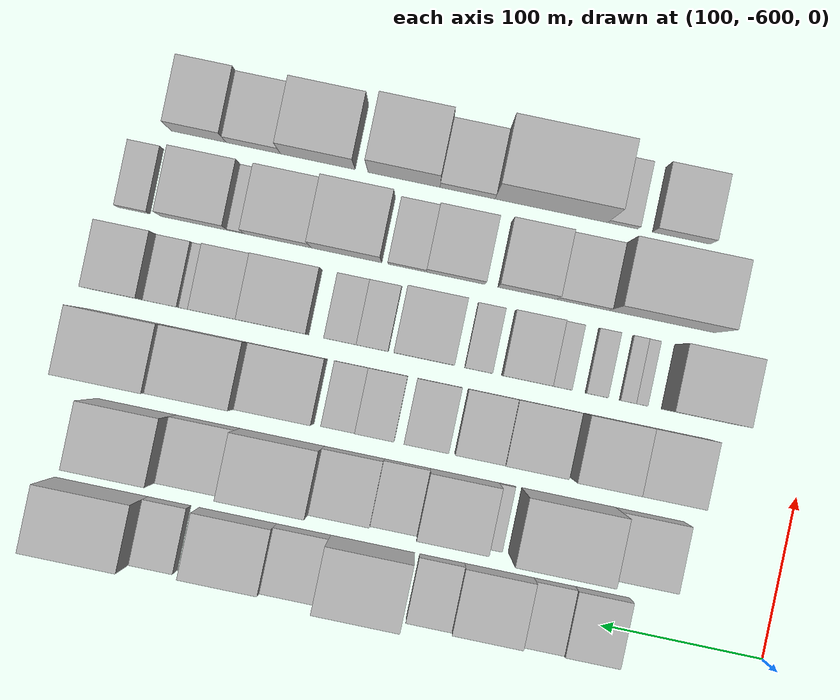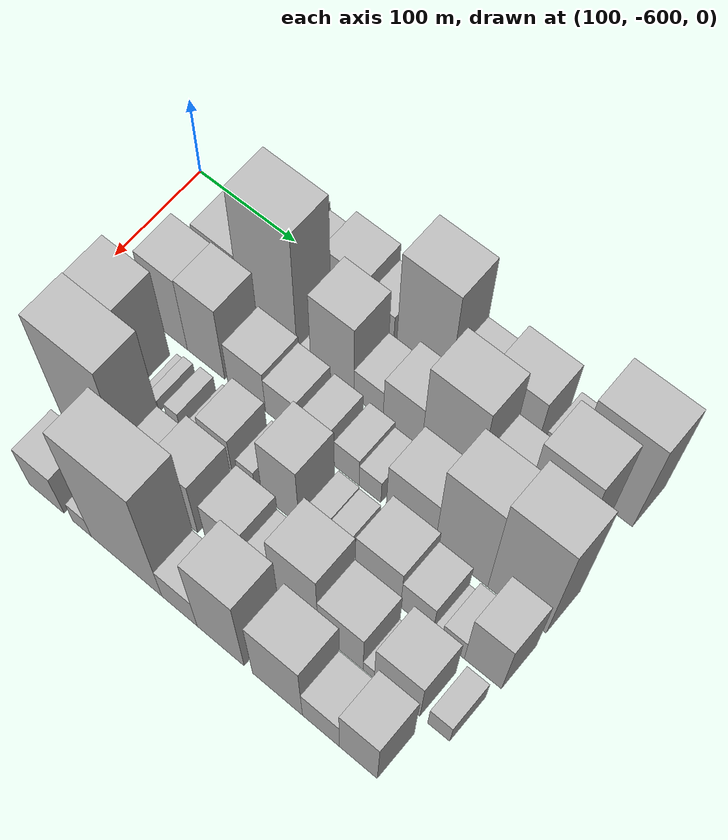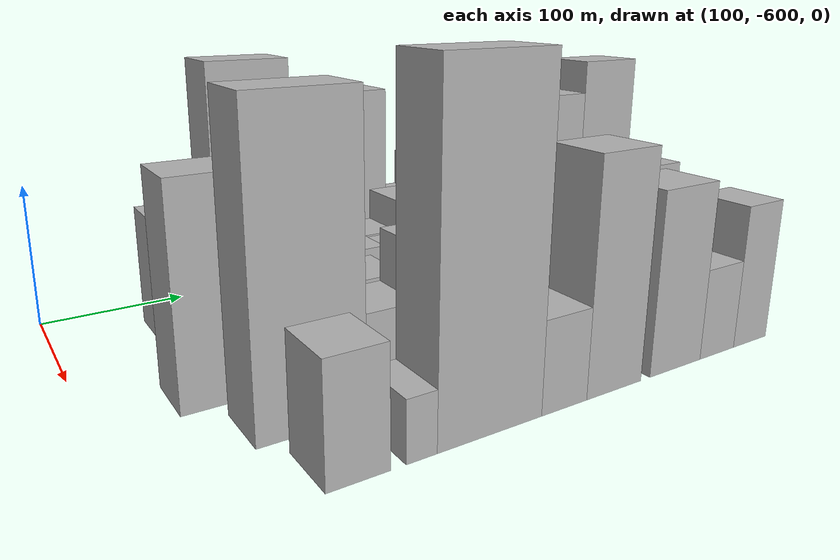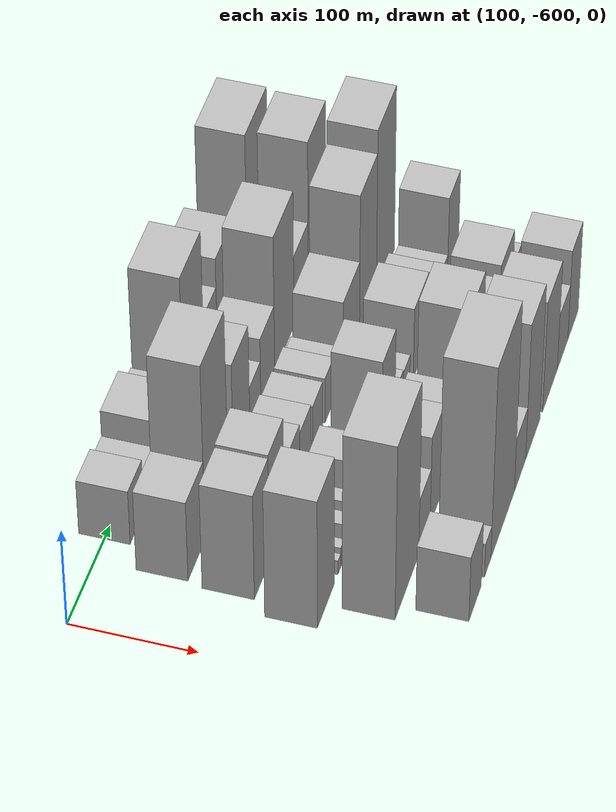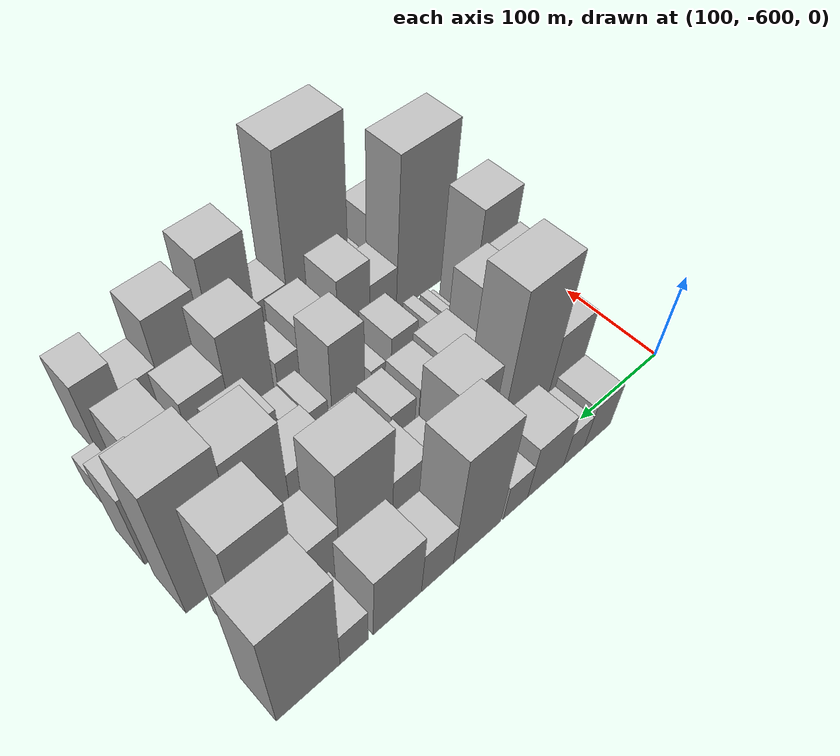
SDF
<sdf version="1.6">
 <world name="default">
  <model name="building_10">
   <static>1</static>
   <pose>100.0000 -496.7508 0 0.000000 0.000000 0.000000</pose>
   <link name="link">
    <pose>0 0 28.50 0 0 0</pose>
    <collision name="collision"><geometry><box><size>40.0000 33.5108 57.0000</size></box></geometry></collision>
    <visual name="visual">
     <cast_shadows>0</cast_shadows>
     <geometry><box><size>40.0000 33.5108 57.0000</size></box></geometry>
     <material>
      <script>
       <uri>model://HANNAS_wall/materials/scripts</uri>
       <uri>model://HANNAS_wall/materials/textures</uri>
       <name>vrc/HANNAS_wall</name>
      </script>
     </material>
    </visual>
   </link>
  </model>
  <model name="building_11">
   <static>1</static>
   <pose>100.0000 -467.1961 0 0.000000 0.000000 0.000000</pose>
   <link name="link">
    <pose>0 0 22.50 0 0 0</pose>
    <collision name="collision"><geometry><box><size>40.0000 25.5986 45.0000</size></box></geometry></collision>
    <visual name="visual">
     <cast_shadows>0</cast_shadows>
     <geometry><box><size>40.0000 25.5986 45.0000</size></box></geometry>
     <material>
      <script>
       <uri>model://HANNAS_wall/materials/scripts</uri>
       <uri>model://HANNAS_wall/materials/textures</uri>
       <name>vrc/HANNAS_wall</name>
      </script>
     </material>
    </visual>
   </link>
  </model>
  <model name="building_12">
   <static>1</static>
   <pose>100.0000 -432.8682 0 0.000000 0.000000 0.000000</pose>
   <link name="link">
    <pose>0 0 36.00 0 0 0</pose>
    <collision name="collision"><geometry><box><size>40.0000 43.0573 72.0000</size></box></geometry></collision>
    <visual name="visual">
     <cast_shadows>0</cast_shadows>
     <geometry><box><size>40.0000 43.0573 72.0000</size></box></geometry>
     <material>
      <script>
       <uri>model://HANNAS_wall/materials/scripts</uri>
       <uri>model://HANNAS_wall/materials/textures</uri>
       <name>vrc/HANNAS_wall</name>
      </script>
     </material>
    </visual>
   </link>
  </model>
  <model name="building_13">
   <static>1</static>
   <pose>100.0000 -397.3391 0 0.000000 0.000000 0.000000</pose>
   <link name="link">
    <pose>0 0 24.00 0 0 0</pose>
    <collision name="collision"><geometry><box><size>40.0000 28.0010 48.0000</size></box></geometry></collision>
    <visual name="visual">
     <cast_shadows>0</cast_shadows>
     <geometry><box><size>40.0000 28.0010 48.0000</size></box></geometry>
     <material>
      <script>
       <uri>model://HANNAS_wall/materials/scripts</uri>
       <uri>model://HANNAS_wall/materials/textures</uri>
       <name>vrc/HANNAS_wall</name>
      </script>
     </material>
    </visual>
   </link>
  </model>
  <model name="building_14">
   <static>1</static>
   <pose>100.0000 -354.3156 0 0.000000 0.000000 0.000000</pose>
   <link name="link">
    <pose>0 0 75.00 0 0 0</pose>
    <collision name="collision"><geometry><box><size>40.0000 52.0459 150.0000</size></box></geometry></collision>
    <visual name="visual">
     <cast_shadows>0</cast_shadows>
     <geometry><box><size>40.0000 52.0459 150.0000</size></box></geometry>
     <material>
      <script>
       <uri>model://HANNAS_wall/materials/scripts</uri>
       <uri>model://HANNAS_wall/materials/textures</uri>
       <name>vrc/HANNAS_wall</name>
      </script>
     </material>
    </visual>
   </link>
  </model>
  <model name="building_15">
   <static>1</static>
   <pose>100.0000 -311.5082 0 0.000000 0.000000 0.000000</pose>
   <link name="link">
    <pose>0 0 30.00 0 0 0</pose>
    <collision name="collision"><geometry><box><size>40.0000 33.5690 60.0000</size></box></geometry></collision>
    <visual name="visual">
     <cast_shadows>0</cast_shadows>
     <geometry><box><size>40.0000 33.5690 60.0000</size></box></geometry>
     <material>
      <script>
       <uri>model://HANNAS_wall/materials/scripts</uri>
       <uri>model://HANNAS_wall/materials/textures</uri>
       <name>vrc/HANNAS_wall</name>
      </script>
     </material>
    </visual>
   </link>
  </model>
  <model name="building_16">
   <static>1</static>
   <pose>100.0000 -270.7139 0 0.000000 0.000000 0.000000</pose>
   <link name="link">
    <pose>0 0 45.00 0 0 0</pose>
    <collision name="collision"><geometry><box><size>40.0000 48.0197 90.0000</size></box></geometry></collision>
    <visual name="visual">
     <cast_shadows>0</cast_shadows>
     <geometry><box><size>40.0000 48.0197 90.0000</size></box></geometry>
     <material>
      <script>
       <uri>model://HANNAS_wall/materials/scripts</uri>
       <uri>model://HANNAS_wall/materials/textures</uri>
       <name>vrc/HANNAS_wall</name>
      </script>
     </material>
    </visual>
   </link>
  </model>
  <model name="building_17">
   <static>1</static>
   <pose>100.0000 -228.3283 0 0.000000 0.000000 0.000000</pose>
   <link name="link">
    <pose>0 0 25.50 0 0 0</pose>
    <collision name="collision"><geometry><box><size>40.0000 26.7515 51.0000</size></box></geometry></collision>
    <visual name="visual">
     <cast_shadows>0</cast_shadows>
     <geometry><box><size>40.0000 26.7515 51.0000</size></box></geometry>
     <material>
      <script>
       <uri>model://HANNAS_wall/materials/scripts</uri>
       <uri>model://HANNAS_wall/materials/textures</uri>
       <name>vrc/HANNAS_wall</name>
      </script>
     </material>
    </visual>
   </link>
  </model>
  <model name="building_18">
   <static>1</static>
   <pose>100.0000 -186.0432 0 0.000000 0.000000 0.000000</pose>
   <link name="link">
    <pose>0 0 73.50 0 0 0</pose>
    <collision name="collision"><geometry><box><size>40.0000 57.8186 147.0000</size></box></geometry></collision>
    <visual name="visual">
     <cast_shadows>0</cast_shadows>
     <geometry><box><size>40.0000 57.8186 147.0000</size></box></geometry>
     <material>
      <script>
       <uri>model://HANNAS_wall/materials/scripts</uri>
       <uri>model://HANNAS_wall/materials/textures</uri>
       <name>vrc/HANNAS_wall</name>
      </script>
     </material>
    </visual>
   </link>
  </model>
  <model name="building_58">
   <static>1</static>
   <pose>152.0000 -514.9470 0 0.000000 0.000000 0.000000</pose>
   <link name="link">
    <pose>0 0 42.00 0 0 0</pose>
    <collision name="collision"><geometry><box><size>40.0000 42.4287 84.0000</size></box></geometry></collision>
    <visual name="visual">
     <cast_shadows>0</cast_shadows>
     <geometry><box><size>40.0000 42.4287 84.0000</size></box></geometry>
     <material>
      <script>
       <uri>model://HANNAS_wall/materials/scripts</uri>
       <uri>model://HANNAS_wall/materials/textures</uri>
       <name>vrc/HANNAS_wall</name>
      </script>
     </material>
    </visual>
   </link>
  </model>
  <model name="building_59">
   <static>1</static>
   <pose>152.0000 -464.6839 0 0.000000 0.000000 0.000000</pose>
   <link name="link">
    <pose>0 0 91.50 0 0 0</pose>
    <collision name="collision"><geometry><box><size>40.0000 58.0975 183.0000</size></box></geometry></collision>
    <visual name="visual">
     <cast_shadows>0</cast_shadows>
     <geometry><box><size>40.0000 58.0975 183.0000</size></box></geometry>
     <material>
      <script>
       <uri>model://HANNAS_wall/materials/scripts</uri>
       <uri>model://HANNAS_wall/materials/textures</uri>
       <name>vrc/HANNAS_wall</name>
      </script>
     </material>
    </visual>
   </link>
  </model>
  <model name="building_60">
   <static>1</static>
   <pose>152.0000 -426.7891 0 0.000000 0.000000 0.000000</pose>
   <link name="link">
    <pose>0 0 10.50 0 0 0</pose>
    <collision name="collision"><geometry><box><size>40.0000 9.6920 21.0000</size></box></geometry></collision>
    <visual name="visual">
     <cast_shadows>0</cast_shadows>
     <geometry><box><size>40.0000 9.6920 21.0000</size></box></geometry>
     <material>
      <script>
       <uri>model://HANNAS_wall/materials/scripts</uri>
       <uri>model://HANNAS_wall/materials/textures</uri>
       <name>vrc/HANNAS_wall</name>
      </script>
     </material>
    </visual>
   </link>
  </model>
  <model name="building_61">
   <static>1</static>
   <pose>152.0000 -400.5287 0 0.000000 0.000000 0.000000</pose>
   <link name="link">
    <pose>0 0 57.00 0 0 0</pose>
    <collision name="collision"><geometry><box><size>40.0000 42.8288 114.0000</size></box></geometry></collision>
    <visual name="visual">
     <cast_shadows>0</cast_shadows>
     <geometry><box><size>40.0000 42.8288 114.0000</size></box></geometry>
     <material>
      <script>
       <uri>model://HANNAS_wall/materials/scripts</uri>
       <uri>model://HANNAS_wall/materials/textures</uri>
       <name>vrc/HANNAS_wall</name>
      </script>
     </material>
    </visual>
   </link>
  </model>
  <model name="building_62">
   <static>1</static>
   <pose>152.0000 -364.8588 0 0.000000 0.000000 0.000000</pose>
   <link name="link">
    <pose>0 0 24.00 0 0 0</pose>
    <collision name="collision"><geometry><box><size>40.0000 28.5111 48.0000</size></box></geometry></collision>
    <visual name="visual">
     <cast_shadows>0</cast_shadows>
     <geometry><box><size>40.0000 28.5111 48.0000</size></box></geometry>
     <material>
      <script>
       <uri>model://HANNAS_wall/materials/scripts</uri>
       <uri>model://HANNAS_wall/materials/textures</uri>
       <name>vrc/HANNAS_wall</name>
      </script>
     </material>
    </visual>
   </link>
  </model>
  <model name="building_63">
   <static>1</static>
   <pose>152.0000 -332.0911 0 0.000000 0.000000 0.000000</pose>
   <link name="link">
    <pose>0 0 36.00 0 0 0</pose>
    <collision name="collision"><geometry><box><size>40.0000 37.0244 72.0000</size></box></geometry></collision>
    <visual name="visual">
     <cast_shadows>0</cast_shadows>
     <geometry><box><size>40.0000 37.0244 72.0000</size></box></geometry>
     <material>
      <script>
       <uri>model://HANNAS_wall/materials/scripts</uri>
       <uri>model://HANNAS_wall/materials/textures</uri>
       <name>vrc/HANNAS_wall</name>
      </script>
     </material>
    </visual>
   </link>
  </model>
  <model name="building_64">
   <static>1</static>
   <pose>152.0000 -287.3211 0 0.000000 0.000000 0.000000</pose>
   <link name="link">
    <pose>0 0 72.00 0 0 0</pose>
    <collision name="collision"><geometry><box><size>40.0000 52.5156 144.0000</size></box></geometry></collision>
    <visual name="visual">
     <cast_shadows>0</cast_shadows>
     <geometry><box><size>40.0000 52.5156 144.0000</size></box></geometry>
     <material>
      <script>
       <uri>model://HANNAS_wall/materials/scripts</uri>
       <uri>model://HANNAS_wall/materials/textures</uri>
       <name>vrc/HANNAS_wall</name>
      </script>
     </material>
    </visual>
   </link>
  </model>
  <model name="building_65">
   <static>1</static>
   <pose>152.0000 -241.3516 0 0.000000 0.000000 0.000000</pose>
   <link name="link">
    <pose>0 0 37.50 0 0 0</pose>
    <collision name="collision"><geometry><box><size>40.0000 39.4234 75.0000</size></box></geometry></collision>
    <visual name="visual">
     <cast_shadows>0</cast_shadows>
     <geometry><box><size>40.0000 39.4234 75.0000</size></box></geometry>
     <material>
      <script>
       <uri>model://HANNAS_wall/materials/scripts</uri>
       <uri>model://HANNAS_wall/materials/textures</uri>
       <name>vrc/HANNAS_wall</name>
      </script>
     </material>
    </visual>
   </link>
  </model>
  <model name="building_66">
   <static>1</static>
   <pose>152.0000 -197.1437 0 0.000000 0.000000 0.000000</pose>
   <link name="link">
    <pose>0 0 79.50 0 0 0</pose>
    <collision name="collision"><geometry><box><size>40.0000 48.9924 159.0000</size></box></geometry></collision>
    <visual name="visual">
     <cast_shadows>0</cast_shadows>
     <geometry><box><size>40.0000 48.9924 159.0000</size></box></geometry>
     <material>
      <script>
       <uri>model://HANNAS_wall/materials/scripts</uri>
       <uri>model://HANNAS_wall/materials/textures</uri>
       <name>vrc/HANNAS_wall</name>
      </script>
     </material>
    </visual>
   </link>
  </model>
  <model name="building_113">
   <static>1</static>
   <pose>204.0000 -520.7409 0 0.000000 0.000000 0.000000</pose>
   <link name="link">
    <pose>0 0 55.50 0 0 0</pose>
    <collision name="collision"><geometry><box><size>40.0000 38.5921 111.0000</size></box></geometry></collision>
    <visual name="visual">
     <cast_shadows>0</cast_shadows>
     <geometry><box><size>40.0000 38.5921 111.0000</size></box></geometry>
     <material>
      <script>
       <uri>model://HANNAS_wall/materials/scripts</uri>
       <uri>model://HANNAS_wall/materials/textures</uri>
       <name>vrc/HANNAS_wall</name>
      </script>
     </material>
    </visual>
   </link>
  </model>
  <model name="building_114">
   <static>1</static>
   <pose>204.0000 -482.3023 0 0.000000 0.000000 0.000000</pose>
   <link name="link">
    <pose>0 0 57.00 0 0 0</pose>
    <collision name="collision"><geometry><box><size>40.0000 38.2851 114.0000</size></box></geometry></collision>
    <visual name="visual">
     <cast_shadows>0</cast_shadows>
     <geometry><box><size>40.0000 38.2851 114.0000</size></box></geometry>
     <material>
      <script>
       <uri>model://HANNAS_wall/materials/scripts</uri>
       <uri>model://HANNAS_wall/materials/textures</uri>
       <name>vrc/HANNAS_wall</name>
      </script>
     </material>
    </visual>
   </link>
  </model>
  <model name="building_115">
   <static>1</static>
   <pose>204.0000 -441.0456 0 0.000000 0.000000 0.000000</pose>
   <link name="link">
    <pose>0 0 33.00 0 0 0</pose>
    <collision name="collision"><geometry><box><size>40.0000 38.2282 66.0000</size></box></geometry></collision>
    <visual name="visual">
     <cast_shadows>0</cast_shadows>
     <geometry><box><size>40.0000 38.2282 66.0000</size></box></geometry>
     <material>
      <script>
       <uri>model://HANNAS_wall/materials/scripts</uri>
       <uri>model://HANNAS_wall/materials/textures</uri>
       <name>vrc/HANNAS_wall</name>
      </script>
     </material>
    </visual>
   </link>
  </model>
  <model name="building_116">
   <static>1</static>
   <pose>204.0000 -406.7556 0 0.000000 0.000000 0.000000</pose>
   <link name="link">
    <pose>0 0 28.50 0 0 0</pose>
    <collision name="collision"><geometry><box><size>40.0000 30.3517 57.0000</size></box></geometry></collision>
    <visual name="visual">
     <cast_shadows>0</cast_shadows>
     <geometry><box><size>40.0000 30.3517 57.0000</size></box></geometry>
     <material>
      <script>
       <uri>model://HANNAS_wall/materials/scripts</uri>
       <uri>model://HANNAS_wall/materials/textures</uri>
       <name>vrc/HANNAS_wall</name>
      </script>
     </material>
    </visual>
   </link>
  </model>
  <model name="building_117">
   <static>1</static>
   <pose>204.0000 -373.9342 0 0.000000 0.000000 0.000000</pose>
   <link name="link">
    <pose>0 0 25.50 0 0 0</pose>
    <collision name="collision"><geometry><box><size>40.0000 27.2911 51.0000</size></box></geometry></collision>
    <visual name="visual">
     <cast_shadows>0</cast_shadows>
     <geometry><box><size>40.0000 27.2911 51.0000</size></box></geometry>
     <material>
      <script>
       <uri>model://HANNAS_wall/materials/scripts</uri>
       <uri>model://HANNAS_wall/materials/textures</uri>
       <name>vrc/HANNAS_wall</name>
      </script>
     </material>
    </visual>
   </link>
  </model>
  <model name="building_118">
   <static>1</static>
   <pose>204.0000 -342.2730 0 0.000000 0.000000 0.000000</pose>
   <link name="link">
    <pose>0 0 24.00 0 0 0</pose>
    <collision name="collision"><geometry><box><size>40.0000 24.0312 48.0000</size></box></geometry></collision>
    <visual name="visual">
     <cast_shadows>0</cast_shadows>
     <geometry><box><size>40.0000 24.0312 48.0000</size></box></geometry>
     <material>
      <script>
       <uri>model://HANNAS_wall/materials/scripts</uri>
       <uri>model://HANNAS_wall/materials/textures</uri>
       <name>vrc/HANNAS_wall</name>
      </script>
     </material>
    </visual>
   </link>
  </model>
  <model name="building_119">
   <static>1</static>
   <pose>204.0000 -319.8531 0 0.000000 0.000000 0.000000</pose>
   <link name="link">
    <pose>0 0 19.50 0 0 0</pose>
    <collision name="collision"><geometry><box><size>40.0000 20.8086 39.0000</size></box></geometry></collision>
    <visual name="visual">
     <cast_shadows>0</cast_shadows>
     <geometry><box><size>40.0000 20.8086 39.0000</size></box></geometry>
     <material>
      <script>
       <uri>model://HANNAS_wall/materials/scripts</uri>
       <uri>model://HANNAS_wall/materials/textures</uri>
       <name>vrc/HANNAS_wall</name>
      </script>
     </material>
    </visual>
   </link>
  </model>
  <model name="building_120">
   <static>1</static>
   <pose>204.0000 -281.4233 0 0.000000 0.000000 0.000000</pose>
   <link name="link">
    <pose>0 0 40.50 0 0 0</pose>
    <collision name="collision"><geometry><box><size>40.0000 46.0510 81.0000</size></box></geometry></collision>
    <visual name="visual">
     <cast_shadows>0</cast_shadows>
     <geometry><box><size>40.0000 46.0510 81.0000</size></box></geometry>
     <material>
      <script>
       <uri>model://HANNAS_wall/materials/scripts</uri>
       <uri>model://HANNAS_wall/materials/textures</uri>
       <name>vrc/HANNAS_wall</name>
      </script>
     </material>
    </visual>
   </link>
  </model>
  <model name="building_121">
   <static>1</static>
   <pose>204.0000 -234.1005 0 0.000000 0.000000 0.000000</pose>
   <link name="link">
    <pose>0 0 75.00 0 0 0</pose>
    <collision name="collision"><geometry><box><size>40.0000 48.5946 150.0000</size></box></geometry></collision>
    <visual name="visual">
     <cast_shadows>0</cast_shadows>
     <geometry><box><size>40.0000 48.5946 150.0000</size></box></geometry>
     <material>
      <script>
       <uri>model://HANNAS_wall/materials/scripts</uri>
       <uri>model://HANNAS_wall/materials/textures</uri>
       <name>vrc/HANNAS_wall</name>
      </script>
     </material>
    </visual>
   </link>
  </model>
  <model name="building_122">
   <static>1</static>
   <pose>204.0000 -183.3602 0 0.000000 0.000000 0.000000</pose>
   <link name="link">
    <pose>0 0 87.00 0 0 0</pose>
    <collision name="collision"><geometry><box><size>40.0000 52.8860 174.0000</size></box></geometry></collision>
    <visual name="visual">
     <cast_shadows>0</cast_shadows>
     <geometry><box><size>40.0000 52.8860 174.0000</size></box></geometry>
     <material>
      <script>
       <uri>model://HANNAS_wall/materials/scripts</uri>
       <uri>model://HANNAS_wall/materials/textures</uri>
       <name>vrc/HANNAS_wall</name>
      </script>
     </material>
    </visual>
   </link>
  </model>
  <model name="building_164">
   <static>1</static>
   <pose>256.0000 -531.2006 0 0.000000 0.000000 0.000000</pose>
   <link name="link">
    <pose>0 0 67.50 0 0 0</pose>
    <collision name="collision"><geometry><box><size>40.0000 45.1703 135.0000</size></box></geometry></collision>
    <visual name="visual">
     <cast_shadows>0</cast_shadows>
     <geometry><box><size>40.0000 45.1703 135.0000</size></box></geometry>
     <material>
      <script>
       <uri>model://HANNAS_wall/materials/scripts</uri>
       <uri>model://HANNAS_wall/materials/textures</uri>
       <name>vrc/HANNAS_wall</name>
      </script>
     </material>
    </visual>
   </link>
  </model>
  <model name="building_165">
   <static>1</static>
   <pose>256.0000 -495.9072 0 0.000000 0.000000 0.000000</pose>
   <link name="link">
    <pose>0 0 7.50 0 0 0</pose>
    <collision name="collision"><geometry><box><size>40.0000 7.4165 15.0000</size></box></geometry></collision>
    <visual name="visual">
     <cast_shadows>0</cast_shadows>
     <geometry><box><size>40.0000 7.4165 15.0000</size></box></geometry>
     <material>
      <script>
       <uri>model://HANNAS_wall/materials/scripts</uri>
       <uri>model://HANNAS_wall/materials/textures</uri>
       <name>vrc/HANNAS_wall</name>
      </script>
     </material>
    </visual>
   </link>
  </model>
  <model name="building_166">
   <static>1</static>
   <pose>256.0000 -487.3966 0 0.000000 0.000000 0.000000</pose>
   <link name="link">
    <pose>0 0 10.50 0 0 0</pose>
    <collision name="collision"><geometry><box><size>40.0000 9.6047 21.0000</size></box></geometry></collision>
    <visual name="visual">
     <cast_shadows>0</cast_shadows>
     <geometry><box><size>40.0000 9.6047 21.0000</size></box></geometry>
     <material>
      <script>
       <uri>model://HANNAS_wall/materials/scripts</uri>
       <uri>model://HANNAS_wall/materials/textures</uri>
       <name>vrc/HANNAS_wall</name>
      </script>
     </material>
    </visual>
   </link>
  </model>
  <model name="building_167">
   <static>1</static>
   <pose>256.0000 -468.0125 0 0.000000 0.000000 0.000000</pose>
   <link name="link">
    <pose>0 0 13.50 0 0 0</pose>
    <collision name="collision"><geometry><box><size>40.0000 13.1635 27.0000</size></box></geometry></collision>
    <visual name="visual">
     <cast_shadows>0</cast_shadows>
     <geometry><box><size>40.0000 13.1635 27.0000</size></box></geometry>
     <material>
      <script>
       <uri>model://HANNAS_wall/materials/scripts</uri>
       <uri>model://HANNAS_wall/materials/textures</uri>
       <name>vrc/HANNAS_wall</name>
      </script>
     </material>
    </visual>
   </link>
  </model>
  <model name="building_168">
   <static>1</static>
   <pose>256.0000 -446.1441 0 0.000000 0.000000 0.000000</pose>
   <link name="link">
    <pose>0 0 13.50 0 0 0</pose>
    <collision name="collision"><geometry><box><size>40.0000 12.5731 27.0000</size></box></geometry></collision>
    <visual name="visual">
     <cast_shadows>0</cast_shadows>
     <geometry><box><size>40.0000 12.5731 27.0000</size></box></geometry>
     <material>
      <script>
       <uri>model://HANNAS_wall/materials/scripts</uri>
       <uri>model://HANNAS_wall/materials/textures</uri>
       <name>vrc/HANNAS_wall</name>
      </script>
     </material>
    </visual>
   </link>
  </model>
  <model name="building_169">
   <static>1</static>
   <pose>256.0000 -424.7480 0 0.000000 0.000000 0.000000</pose>
   <link name="link">
    <pose>0 0 28.50 0 0 0</pose>
    <collision name="collision"><geometry><box><size>40.0000 30.2192 57.0000</size></box></geometry></collision>
    <visual name="visual">
     <cast_shadows>0</cast_shadows>
     <geometry><box><size>40.0000 30.2192 57.0000</size></box></geometry>
     <material>
      <script>
       <uri>model://HANNAS_wall/materials/scripts</uri>
       <uri>model://HANNAS_wall/materials/textures</uri>
       <name>vrc/HANNAS_wall</name>
      </script>
     </material>
    </visual>
   </link>
  </model>
  <model name="building_170">
   <static>1</static>
   <pose>256.0000 -395.1983 0 0.000000 0.000000 0.000000</pose>
   <link name="link">
    <pose>0 0 16.50 0 0 0</pose>
    <collision name="collision"><geometry><box><size>40.0000 16.8802 33.0000</size></box></geometry></collision>
    <visual name="visual">
     <cast_shadows>0</cast_shadows>
     <geometry><box><size>40.0000 16.8802 33.0000</size></box></geometry>
     <material>
      <script>
       <uri>model://HANNAS_wall/materials/scripts</uri>
       <uri>model://HANNAS_wall/materials/textures</uri>
       <name>vrc/HANNAS_wall</name>
      </script>
     </material>
    </visual>
   </link>
  </model>
  <model name="building_171">
   <static>1</static>
   <pose>256.0000 -361.7083 0 0.000000 0.000000 0.000000</pose>
   <link name="link">
    <pose>0 0 52.50 0 0 0</pose>
    <collision name="collision"><geometry><box><size>40.0000 36.0996 105.0000</size></box></geometry></collision>
    <visual name="visual">
     <cast_shadows>0</cast_shadows>
     <geometry><box><size>40.0000 36.0996 105.0000</size></box></geometry>
     <material>
      <script>
       <uri>model://HANNAS_wall/materials/scripts</uri>
       <uri>model://HANNAS_wall/materials/textures</uri>
       <name>vrc/HANNAS_wall</name>
      </script>
     </material>
    </visual>
   </link>
  </model>
  <model name="building_172">
   <static>1</static>
   <pose>256.0000 -329.8893 0 0.000000 0.000000 0.000000</pose>
   <link name="link">
    <pose>0 0 19.50 0 0 0</pose>
    <collision name="collision"><geometry><box><size>40.0000 19.5384 39.0000</size></box></geometry></collision>
    <visual name="visual">
     <cast_shadows>0</cast_shadows>
     <geometry><box><size>40.0000 19.5384 39.0000</size></box></geometry>
     <material>
      <script>
       <uri>model://HANNAS_wall/materials/scripts</uri>
       <uri>model://HANNAS_wall/materials/textures</uri>
       <name>vrc/HANNAS_wall</name>
      </script>
     </material>
    </visual>
   </link>
  </model>
  <model name="building_173">
   <static>1</static>
   <pose>256.0000 -310.1973 0 0.000000 0.000000 0.000000</pose>
   <link name="link">
    <pose>0 0 18.00 0 0 0</pose>
    <collision name="collision"><geometry><box><size>40.0000 19.8457 36.0000</size></box></geometry></collision>
    <visual name="visual">
     <cast_shadows>0</cast_shadows>
     <geometry><box><size>40.0000 19.8457 36.0000</size></box></geometry>
     <material>
      <script>
       <uri>model://HANNAS_wall/materials/scripts</uri>
       <uri>model://HANNAS_wall/materials/textures</uri>
       <name>vrc/HANNAS_wall</name>
      </script>
     </material>
    </visual>
   </link>
  </model>
  <model name="building_174">
   <static>1</static>
   <pose>256.0000 -269.2125 0 0.000000 0.000000 0.000000</pose>
   <link name="link">
    <pose>0 0 37.50 0 0 0</pose>
    <collision name="collision"><geometry><box><size>40.0000 42.1239 75.0000</size></box></geometry></collision>
    <visual name="visual">
     <cast_shadows>0</cast_shadows>
     <geometry><box><size>40.0000 42.1239 75.0000</size></box></geometry>
     <material>
      <script>
       <uri>model://HANNAS_wall/materials/scripts</uri>
       <uri>model://HANNAS_wall/materials/textures</uri>
       <name>vrc/HANNAS_wall</name>
      </script>
     </material>
    </visual>
   </link>
  </model>
  <model name="building_175">
   <static>1</static>
   <pose>256.0000 -233.2861 0 0.000000 0.000000 0.000000</pose>
   <link name="link">
    <pose>0 0 28.50 0 0 0</pose>
    <collision name="collision"><geometry><box><size>40.0000 29.7290 57.0000</size></box></geometry></collision>
    <visual name="visual">
     <cast_shadows>0</cast_shadows>
     <geometry><box><size>40.0000 29.7290 57.0000</size></box></geometry>
     <material>
      <script>
       <uri>model://HANNAS_wall/materials/scripts</uri>
       <uri>model://HANNAS_wall/materials/textures</uri>
       <name>vrc/HANNAS_wall</name>
      </script>
     </material>
    </visual>
   </link>
  </model>
  <model name="building_176">
   <static>1</static>
   <pose>256.0000 -214.4517 0 0.000000 0.000000 0.000000</pose>
   <link name="link">
    <pose>0 0 9.00 0 0 0</pose>
    <collision name="collision"><geometry><box><size>40.0000 7.9398 18.0000</size></box></geometry></collision>
    <visual name="visual">
     <cast_shadows>0</cast_shadows>
     <geometry><box><size>40.0000 7.9398 18.0000</size></box></geometry>
     <material>
      <script>
       <uri>model://HANNAS_wall/materials/scripts</uri>
       <uri>model://HANNAS_wall/materials/textures</uri>
       <name>vrc/HANNAS_wall</name>
      </script>
     </material>
    </visual>
   </link>
  </model>
  <model name="building_177">
   <static>1</static>
   <pose>256.0000 -200.1519 0 0.000000 0.000000 0.000000</pose>
   <link name="link">
    <pose>0 0 19.50 0 0 0</pose>
    <collision name="collision"><geometry><box><size>40.0000 20.6597 39.0000</size></box></geometry></collision>
    <visual name="visual">
     <cast_shadows>0</cast_shadows>
     <geometry><box><size>40.0000 20.6597 39.0000</size></box></geometry>
     <material>
      <script>
       <uri>model://HANNAS_wall/materials/scripts</uri>
       <uri>model://HANNAS_wall/materials/textures</uri>
       <name>vrc/HANNAS_wall</name>
      </script>
     </material>
    </visual>
   </link>
  </model>
  <model name="building_178">
   <static>1</static>
   <pose>256.0000 -173.1680 0 0.000000 0.000000 0.000000</pose>
   <link name="link">
    <pose>0 0 49.50 0 0 0</pose>
    <collision name="collision"><geometry><box><size>40.0000 33.3081 99.0000</size></box></geometry></collision>
    <visual name="visual">
     <cast_shadows>0</cast_shadows>
     <geometry><box><size>40.0000 33.3081 99.0000</size></box></geometry>
     <material>
      <script>
       <uri>model://HANNAS_wall/materials/scripts</uri>
       <uri>model://HANNAS_wall/materials/textures</uri>
       <name>vrc/HANNAS_wall</name>
      </script>
     </material>
    </visual>
   </link>
  </model>
  <model name="building_219">
   <static>1</static>
   <pose>308.0000 -497.8369 0 0.000000 0.000000 0.000000</pose>
   <link name="link">
    <pose>0 0 91.50 0 0 0</pose>
    <collision name="collision"><geometry><box><size>40.0000 65.4855 183.0000</size></box></geometry></collision>
    <visual name="visual">
     <cast_shadows>0</cast_shadows>
     <geometry><box><size>40.0000 65.4855 183.0000</size></box></geometry>
     <material>
      <script>
       <uri>model://HANNAS_wall/materials/scripts</uri>
       <uri>model://HANNAS_wall/materials/textures</uri>
       <name>vrc/HANNAS_wall</name>
      </script>
     </material>
    </visual>
   </link>
  </model>
  <model name="building_220">
   <static>1</static>
   <pose>308.0000 -448.9367 0 0.000000 0.000000 0.000000</pose>
   <link name="link">
    <pose>0 0 30.00 0 0 0</pose>
    <collision name="collision"><geometry><box><size>40.0000 32.3150 60.0000</size></box></geometry></collision>
    <visual name="visual">
     <cast_shadows>0</cast_shadows>
     <geometry><box><size>40.0000 32.3150 60.0000</size></box></geometry>
     <material>
      <script>
       <uri>model://HANNAS_wall/materials/scripts</uri>
       <uri>model://HANNAS_wall/materials/textures</uri>
       <name>vrc/HANNAS_wall</name>
      </script>
     </material>
    </visual>
   </link>
  </model>
  <model name="building_221">
   <static>1</static>
   <pose>308.0000 -414.6286 0 0.000000 0.000000 0.000000</pose>
   <link name="link">
    <pose>0 0 46.50 0 0 0</pose>
    <collision name="collision"><geometry><box><size>40.0000 36.3013 93.0000</size></box></geometry></collision>
    <visual name="visual">
     <cast_shadows>0</cast_shadows>
     <geometry><box><size>40.0000 36.3013 93.0000</size></box></geometry>
     <material>
      <script>
       <uri>model://HANNAS_wall/materials/scripts</uri>
       <uri>model://HANNAS_wall/materials/textures</uri>
       <name>vrc/HANNAS_wall</name>
      </script>
     </material>
    </visual>
   </link>
  </model>
  <model name="building_222">
   <static>1</static>
   <pose>308.0000 -370.4463 0 0.000000 0.000000 0.000000</pose>
   <link name="link">
    <pose>0 0 36.00 0 0 0</pose>
    <collision name="collision"><geometry><box><size>40.0000 36.0632 72.0000</size></box></geometry></collision>
    <visual name="visual">
     <cast_shadows>0</cast_shadows>
     <geometry><box><size>40.0000 36.0632 72.0000</size></box></geometry>
     <material>
      <script>
       <uri>model://HANNAS_wall/materials/scripts</uri>
       <uri>model://HANNAS_wall/materials/textures</uri>
       <name>vrc/HANNAS_wall</name>
      </script>
     </material>
    </visual>
   </link>
  </model>
  <model name="building_223">
   <static>1</static>
   <pose>308.0000 -340.5174 0 0.000000 0.000000 0.000000</pose>
   <link name="link">
    <pose>0 0 22.50 0 0 0</pose>
    <collision name="collision"><geometry><box><size>40.0000 23.7947 45.0000</size></box></geometry></collision>
    <visual name="visual">
     <cast_shadows>0</cast_shadows>
     <geometry><box><size>40.0000 23.7947 45.0000</size></box></geometry>
     <material>
      <script>
       <uri>model://HANNAS_wall/materials/scripts</uri>
       <uri>model://HANNAS_wall/materials/textures</uri>
       <name>vrc/HANNAS_wall</name>
      </script>
     </material>
    </visual>
   </link>
  </model>
  <model name="building_224">
   <static>1</static>
   <pose>308.0000 -302.7310 0 0.000000 0.000000 0.000000</pose>
   <link name="link">
    <pose>0 0 60.00 0 0 0</pose>
    <collision name="collision"><geometry><box><size>40.0000 43.7780 120.0000</size></box></geometry></collision>
    <visual name="visual">
     <cast_shadows>0</cast_shadows>
     <geometry><box><size>40.0000 43.7780 120.0000</size></box></geometry>
     <material>
      <script>
       <uri>model://HANNAS_wall/materials/scripts</uri>
       <uri>model://HANNAS_wall/materials/textures</uri>
       <name>vrc/HANNAS_wall</name>
      </script>
     </material>
    </visual>
   </link>
  </model>
  <model name="building_225">
   <static>1</static>
   <pose>308.0000 -260.1547 0 0.000000 0.000000 0.000000</pose>
   <link name="link">
    <pose>0 0 37.50 0 0 0</pose>
    <collision name="collision"><geometry><box><size>40.0000 41.3748 75.0000</size></box></geometry></collision>
    <visual name="visual">
     <cast_shadows>0</cast_shadows>
     <geometry><box><size>40.0000 41.3748 75.0000</size></box></geometry>
     <material>
      <script>
       <uri>model://HANNAS_wall/materials/scripts</uri>
       <uri>model://HANNAS_wall/materials/textures</uri>
       <name>vrc/HANNAS_wall</name>
      </script>
     </material>
    </visual>
   </link>
  </model>
  <model name="building_226">
   <static>1</static>
   <pose>308.0000 -234.3838 0 0.000000 0.000000 0.000000</pose>
   <link name="link">
    <pose>0 0 10.50 0 0 0</pose>
    <collision name="collision"><geometry><box><size>40.0000 10.1671 21.0000</size></box></geometry></collision>
    <visual name="visual">
     <cast_shadows>0</cast_shadows>
     <geometry><box><size>40.0000 10.1671 21.0000</size></box></geometry>
     <material>
      <script>
       <uri>model://HANNAS_wall/materials/scripts</uri>
       <uri>model://HANNAS_wall/materials/textures</uri>
       <name>vrc/HANNAS_wall</name>
      </script>
     </material>
    </visual>
   </link>
  </model>
  <model name="building_227">
   <static>1</static>
   <pose>308.0000 -208.6576 0 0.000000 0.000000 0.000000</pose>
   <link name="link">
    <pose>0 0 39.00 0 0 0</pose>
    <collision name="collision"><geometry><box><size>40.0000 41.2853 78.0000</size></box></geometry></collision>
    <visual name="visual">
     <cast_shadows>0</cast_shadows>
     <geometry><box><size>40.0000 41.2853 78.0000</size></box></geometry>
     <material>
      <script>
       <uri>model://HANNAS_wall/materials/scripts</uri>
       <uri>model://HANNAS_wall/materials/textures</uri>
       <name>vrc/HANNAS_wall</name>
      </script>
     </material>
    </visual>
   </link>
  </model>
  <model name="building_228">
   <static>1</static>
   <pose>308.0000 -171.1483 0 0.000000 0.000000 0.000000</pose>
   <link name="link">
    <pose>0 0 19.50 0 0 0</pose>
    <collision name="collision"><geometry><box><size>40.0000 19.7333 39.0000</size></box></geometry></collision>
    <visual name="visual">
     <cast_shadows>0</cast_shadows>
     <geometry><box><size>40.0000 19.7333 39.0000</size></box></geometry>
     <material>
      <script>
       <uri>model://HANNAS_wall/materials/scripts</uri>
       <uri>model://HANNAS_wall/materials/textures</uri>
       <name>vrc/HANNAS_wall</name>
      </script>
     </material>
    </visual>
   </link>
  </model>
  <model name="building_272">
   <static>1</static>
   <pose>360.0000 -499.1945 0 0.000000 0.000000 0.000000</pose>
   <link name="link">
    <pose>0 0 34.50 0 0 0</pose>
    <collision name="collision"><geometry><box><size>40.0000 35.7088 69.0000</size></box></geometry></collision>
    <visual name="visual">
     <cast_shadows>0</cast_shadows>
     <geometry><box><size>40.0000 35.7088 69.0000</size></box></geometry>
     <material>
      <script>
       <uri>model://HANNAS_wall/materials/scripts</uri>
       <uri>model://HANNAS_wall/materials/textures</uri>
       <name>vrc/HANNAS_wall</name>
      </script>
     </material>
    </visual>
   </link>
  </model>
  <model name="building_273">
   <static>1</static>
   <pose>360.0000 -463.0196 0 0.000000 0.000000 0.000000</pose>
   <link name="link">
    <pose>0 0 18.00 0 0 0</pose>
    <collision name="collision"><geometry><box><size>40.0000 18.6409 36.0000</size></box></geometry></collision>
    <visual name="visual">
     <cast_shadows>0</cast_shadows>
     <geometry><box><size>40.0000 18.6409 36.0000</size></box></geometry>
     <material>
      <script>
       <uri>model://HANNAS_wall/materials/scripts</uri>
       <uri>model://HANNAS_wall/materials/textures</uri>
       <name>vrc/HANNAS_wall</name>
      </script>
     </material>
    </visual>
   </link>
  </model>
  <model name="building_274">
   <static>1</static>
   <pose>360.0000 -418.7768 0 0.000000 0.000000 0.000000</pose>
   <link name="link">
    <pose>0 0 100.50 0 0 0</pose>
    <collision name="collision"><geometry><box><size>40.0000 69.8447 201.0000</size></box></geometry></collision>
    <visual name="visual">
     <cast_shadows>0</cast_shadows>
     <geometry><box><size>40.0000 69.8447 201.0000</size></box></geometry>
     <material>
      <script>
       <uri>model://HANNAS_wall/materials/scripts</uri>
       <uri>model://HANNAS_wall/materials/textures</uri>
       <name>vrc/HANNAS_wall</name>
      </script>
     </material>
    </visual>
   </link>
  </model>
  <model name="building_275">
   <static>1</static>
   <pose>360.0000 -366.8244 0 0.000000 0.000000 0.000000</pose>
   <link name="link">
    <pose>0 0 28.50 0 0 0</pose>
    <collision name="collision"><geometry><box><size>40.0000 34.0600 57.0000</size></box></geometry></collision>
    <visual name="visual">
     <cast_shadows>0</cast_shadows>
     <geometry><box><size>40.0000 34.0600 57.0000</size></box></geometry>
     <material>
      <script>
       <uri>model://HANNAS_wall/materials/scripts</uri>
       <uri>model://HANNAS_wall/materials/textures</uri>
       <name>vrc/HANNAS_wall</name>
      </script>
     </material>
    </visual>
   </link>
  </model>
  <model name="building_276">
   <static>1</static>
   <pose>360.0000 -327.4834 0 0.000000 0.000000 0.000000</pose>
   <link name="link">
    <pose>0 0 72.00 0 0 0</pose>
    <collision name="collision"><geometry><box><size>40.0000 44.6220 144.0000</size></box></geometry></collision>
    <visual name="visual">
     <cast_shadows>0</cast_shadows>
     <geometry><box><size>40.0000 44.6220 144.0000</size></box></geometry>
     <material>
      <script>
       <uri>model://HANNAS_wall/materials/scripts</uri>
       <uri>model://HANNAS_wall/materials/textures</uri>
       <name>vrc/HANNAS_wall</name>
      </script>
     </material>
    </visual>
   </link>
  </model>
  <model name="building_277">
   <static>1</static>
   <pose>360.0000 -274.0382 0 0.000000 0.000000 0.000000</pose>
   <link name="link">
    <pose>0 0 58.50 0 0 0</pose>
    <collision name="collision"><geometry><box><size>40.0000 46.2685 117.0000</size></box></geometry></collision>
    <visual name="visual">
     <cast_shadows>0</cast_shadows>
     <geometry><box><size>40.0000 46.2685 117.0000</size></box></geometry>
     <material>
      <script>
       <uri>model://HANNAS_wall/materials/scripts</uri>
       <uri>model://HANNAS_wall/materials/textures</uri>
       <name>vrc/HANNAS_wall</name>
      </script>
     </material>
    </visual>
   </link>
  </model>
  <model name="building_278">
   <static>1</static>
   <pose>360.0000 -234.0767 0 0.000000 0.000000 0.000000</pose>
   <link name="link">
    <pose>0 0 30.00 0 0 0</pose>
    <collision name="collision"><geometry><box><size>40.0000 33.6545 60.0000</size></box></geometry></collision>
    <visual name="visual">
     <cast_shadows>0</cast_shadows>
     <geometry><box><size>40.0000 33.6545 60.0000</size></box></geometry>
     <material>
      <script>
       <uri>model://HANNAS_wall/materials/scripts</uri>
       <uri>model://HANNAS_wall/materials/textures</uri>
       <name>vrc/HANNAS_wall</name>
      </script>
     </material>
    </visual>
   </link>
  </model>
  <model name="building_279">
   <static>1</static>
   <pose>360.0000 -200.2490 0 0.000000 0.000000 0.000000</pose>
   <link name="link">
    <pose>0 0 48.00 0 0 0</pose>
    <collision name="collision"><geometry><box><size>40.0000 34.0009 96.0000</size></box></geometry></collision>
    <visual name="visual">
     <cast_shadows>0</cast_shadows>
     <geometry><box><size>40.0000 34.0009 96.0000</size></box></geometry>
     <material>
      <script>
       <uri>model://HANNAS_wall/materials/scripts</uri>
       <uri>model://HANNAS_wall/materials/textures</uri>
       <name>vrc/HANNAS_wall</name>
      </script>
     </material>
    </visual>
   </link>
  </model>
 </world>
</sdf>
